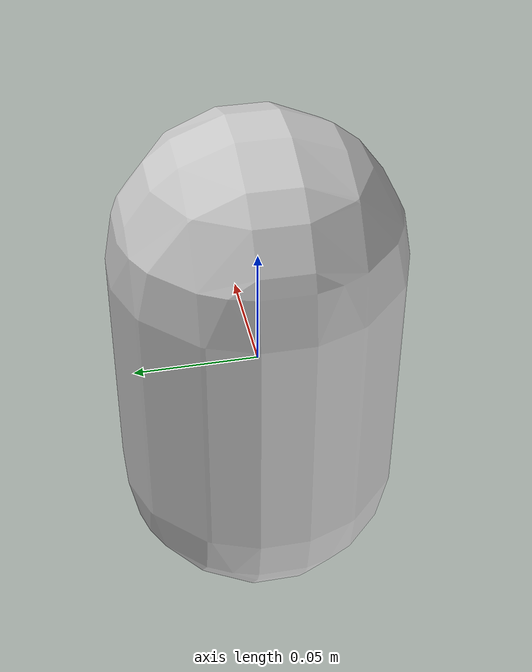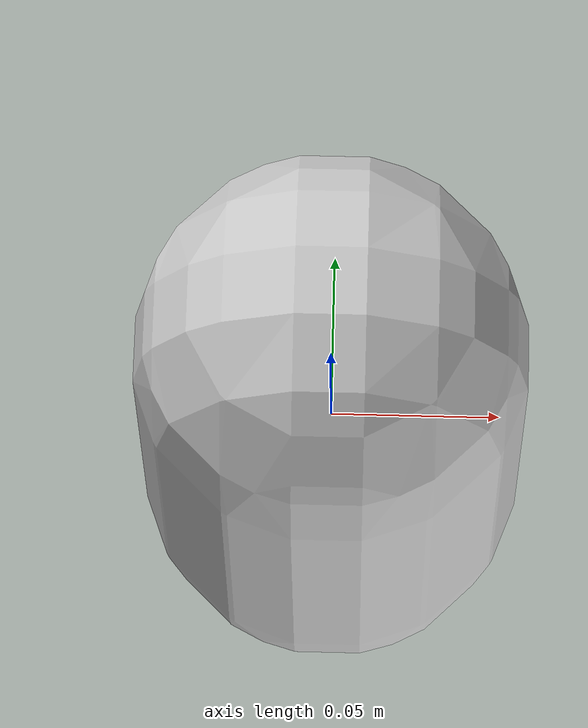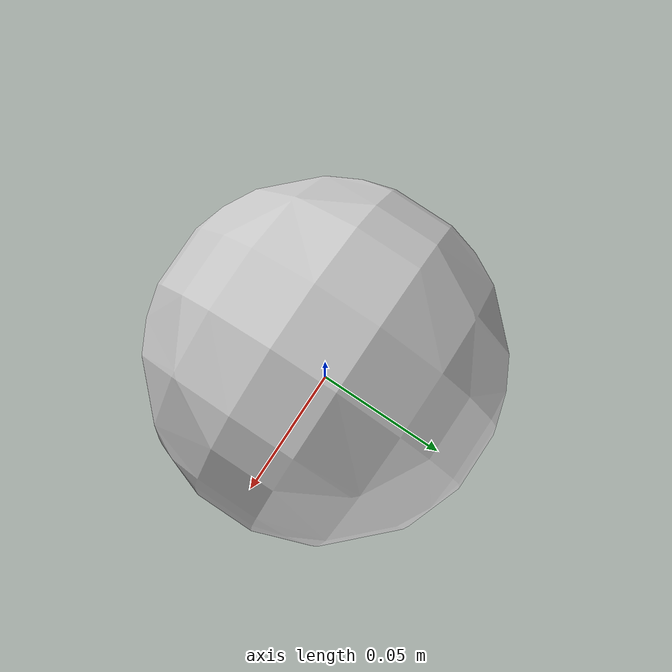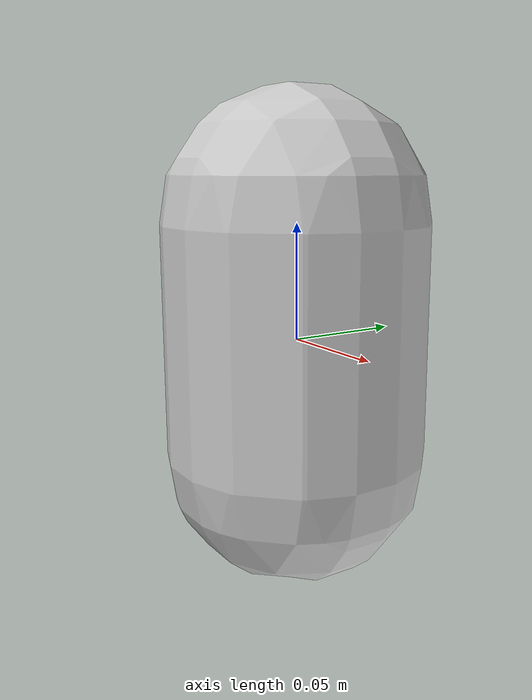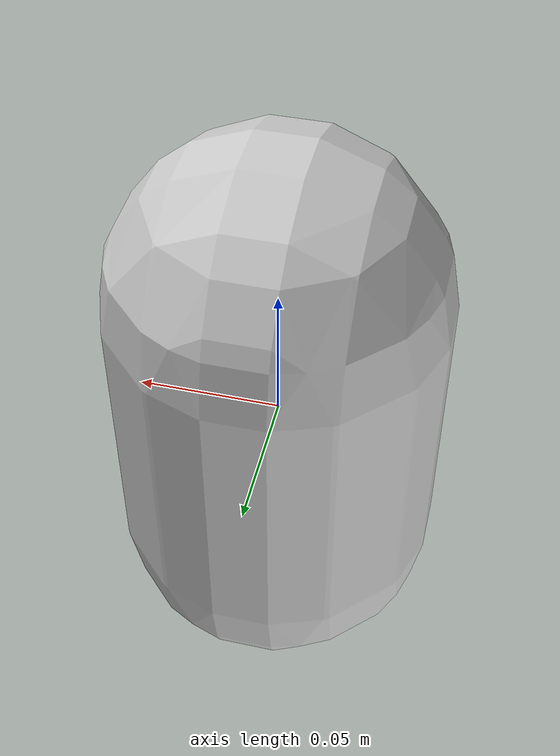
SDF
<?xml version="1.0" ?>
<sdf version="1.7">
    <plugin filename="ignition-gazebo-contact-system"
            name="ignition::gazebo::systems::Contact">
    </plugin>

    <model name="enemy">
        <link name='enemy'>
            <visual name='visual'>
              <geometry>
               <mesh>
                  <uri>enemy.dae</uri>
                  <scale>.05 0.05 0.05</scale>
                </mesh>
              </geometry>
              <material>
                <ambient>0.8 0.8 0.8 1</ambient>
                <diffuse>0.8 0.8 0.8 1</diffuse>
                <pbr>
                    <metal>
                      <albedo_map>error.jpg</albedo_map>
                      <normal_map>error.jpg</normal_map>
                    </metal>
                  </pbr>
              </material>
            </visual>
            <collision name='visual'>
              <geometry>
               <mesh>
                  <uri>enemy.dae</uri>
                  <scale>.05 0.05 0.05</scale>
                </mesh>
              </geometry>
            </collision>
        </link>
    </model>
    <plugin filename="ignition-gazebo-touchplugin-system"
            name="ignition::gazebo::systems::TouchPlugin">
        <target>robot</target>
        <namespace>enemy</namespace>
        <time>0.001</time>
        <enabled>true</enabled>
    </plugin>
</sdf>
